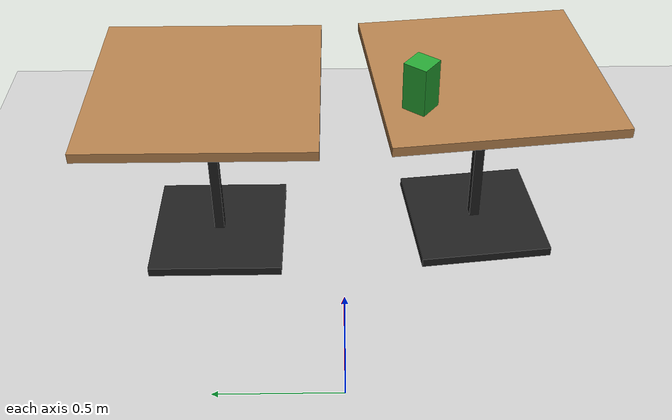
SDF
<sdf version="1.6">
 <world name="default">
  <light name="sun" type="directional">
   <pose>0 0 10 0 -0 0</pose>
   <diffuse>0.8 0.8 0.8 1</diffuse>
   <specular>0.2 0.2 0.2 1</specular>
   <attenuation>
    <range>1000</range>
    <constant>0.9</constant>
    <linear>0.01</linear>
    <quadratic>0.001</quadratic>
   </attenuation>
   <direction>-0.5 0.1 -0.9</direction>
  </light>
  <physics name="dart_2ms" default="0" type="dart">
   <max_step_size>0.002</max_step_size>
   <real_time_factor>1</real_time_factor>
   <real_time_update_rate>500</real_time_update_rate>
   <dart><solver><solver_type>pgs</solver_type></solver></dart>
  </physics>
  <model name="ground_plane">
   <static>1</static>
   <link name="link">
    <collision name="collision">
     <geometry><plane><normal>0 0 1</normal><size>100 100</size></plane></geometry>
     <surface>
      <contact><collide_bitmask>65535</collide_bitmask></contact>
      <friction><ode><mu>100</mu><mu2>50</mu2></ode></friction>
     </surface>
    </collision>
    <visual name="visual">
     <cast_shadows>0</cast_shadows>
     <geometry><plane><normal>0 0 1</normal><size>100 100</size></plane></geometry>
     <material>
      <script><uri>file://media/materials/scripts/gazebo.material</uri><name>Gazebo/Grey</name></script>
     </material>
    </visual>
   </link>
  </model>
  <gravity>0 0 -9.8</gravity>
  <magnetic_field>6e-06 2.3e-05 -4.2e-05</magnetic_field>
  <atmosphere type="adiabatic"/>
  <scene><ambient>0.4 0.4 0.4 1</ambient><background>0.7 0.7 0.7 1</background><shadows>1</shadows></scene>
  <spherical_coordinates>
   <surface_model>EARTH_WGS84</surface_model>
   <latitude_deg>0</latitude_deg>
   <longitude_deg>0</longitude_deg>
   <elevation>0</elevation>
   <heading_deg>0</heading_deg>
  </spherical_coordinates>
  <model name="table1">
   <link name="link">
    <collision name="surface">
     <pose>0 0 0.755 0 -0 0</pose>
     <geometry><box><size>0.913 0.913 0.04</size></box></geometry>
    </collision>
    <collision name="column">
     <pose>0 0 0.37 0 -0 0</pose>
     <geometry><box><size>0.042 0.042 0.74</size></box></geometry>
    </collision>
    <collision name="base">
     <pose>0 0 0.02 0 -0 0</pose>
     <geometry><box><size>0.56 0.56 0.04</size></box></geometry>
    </collision>
    <visual name="surface">
     <pose>0 0 0.755 0 -0 0</pose>
     <geometry><box><size>0.913 0.913 0.04</size></box></geometry>
     <material>
      <script><uri>file://media/materials/scripts/gazebo.material</uri><name>Gazebo/WoodFloor</name></script>
     </material>
    </visual>
    <visual name="column">
     <pose>0 0 0.37 0 -0 0</pose>
     <geometry><box><size>0.042 0.042 0.74</size></box></geometry>
     <material>
      <script><uri>file://media/materials/scripts/gazebo.material</uri><name>Gazebo/Black</name></script>
     </material>
    </visual>
    <visual name="base">
     <pose>0 0 0.02 0 -0 0</pose>
     <geometry><box><size>0.56 0.56 0.04</size></box></geometry>
     <material>
      <script><uri>file://media/materials/scripts/gazebo.material</uri><name>Gazebo/Black</name></script>
     </material>
    </visual>
    <inertial>
     <inertia><ixx>1</ixx><ixy>0</ixy><ixz>0</ixz><iyy>1</iyy><iyz>0</iyz><izz>1</izz></inertia>
     <mass>1</mass>
    </inertial>
   </link>
   <static>1</static>
   <pose>0.988553 -0.579252 -1e-06 4e-06 0 0.11659</pose>
  </model>
  <model name="object1">
   <link name="link">
    <inertial>
     <mass>0.2</mass>
     <inertia><ixx>0.00125</ixx><ixy>0</ixy><ixz>0</ixz><iyy>0.00125</iyy><iyz>0</iyz><izz>0.0005</izz></inertia>
    </inertial>
    <collision name="box"><geometry><box><size>0.1 0.1 0.2</size></box></geometry></collision>
    <visual name="box">
     <geometry><box><size>0.1 0.1 0.2</size></box></geometry>
     <material>
      <script><uri>file://media/materials/scripts/gazebo.material</uri><name>Gazebo/Green</name></script>
     </material>
    </visual>
   </link>
   <pose>0.748952 -0.297405 0.874998 4e-06 2.3e-05 0.923362</pose>
  </model>
  <model name="table2">
   <link name="link">
    <collision name="surface">
     <pose>0 0 0.755 0 -0 0</pose>
     <geometry><box><size>0.913 0.913 0.04</size></box></geometry>
    </collision>
    <collision name="column">
     <pose>0 0 0.37 0 -0 0</pose>
     <geometry><box><size>0.042 0.042 0.74</size></box></geometry>
    </collision>
    <collision name="base">
     <pose>0 0 0.02 0 -0 0</pose>
     <geometry><box><size>0.56 0.56 0.04</size></box></geometry>
    </collision>
    <visual name="surface">
     <pose>0 0 0.755 0 -0 0</pose>
     <geometry><box><size>0.913 0.913 0.04</size></box></geometry>
     <material>
      <script><uri>file://media/materials/scripts/gazebo.material</uri><name>Gazebo/WoodFloor</name></script>
     </material>
    </visual>
    <visual name="column">
     <pose>0 0 0.37 0 -0 0</pose>
     <geometry><box><size>0.042 0.042 0.74</size></box></geometry>
     <material>
      <script><uri>file://media/materials/scripts/gazebo.material</uri><name>Gazebo/Black</name></script>
     </material>
    </visual>
    <visual name="base">
     <pose>0 0 0.02 0 -0 0</pose>
     <geometry><box><size>0.56 0.56 0.04</size></box></geometry>
     <material>
      <script><uri>file://media/materials/scripts/gazebo.material</uri><name>Gazebo/Black</name></script>
     </material>
    </visual>
    <inertial>
     <inertia><ixx>1</ixx><ixy>0</ixy><ixz>0</ixz><iyy>1</iyy><iyz>0</iyz><izz>1</izz></inertia>
     <mass>1</mass>
    </inertial>
   </link>
   <static>1</static>
   <pose>0.918685 0.54309 -2e-06 -1e-06 -5e-06 0</pose>
  </model>
 </world>
</sdf>
